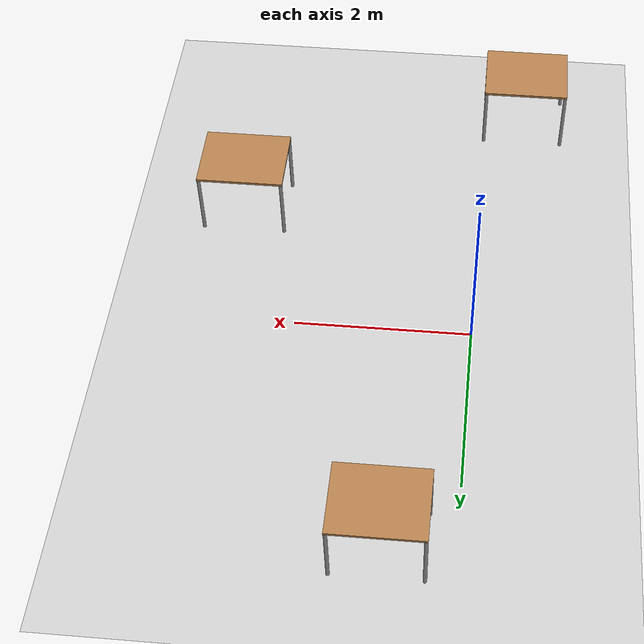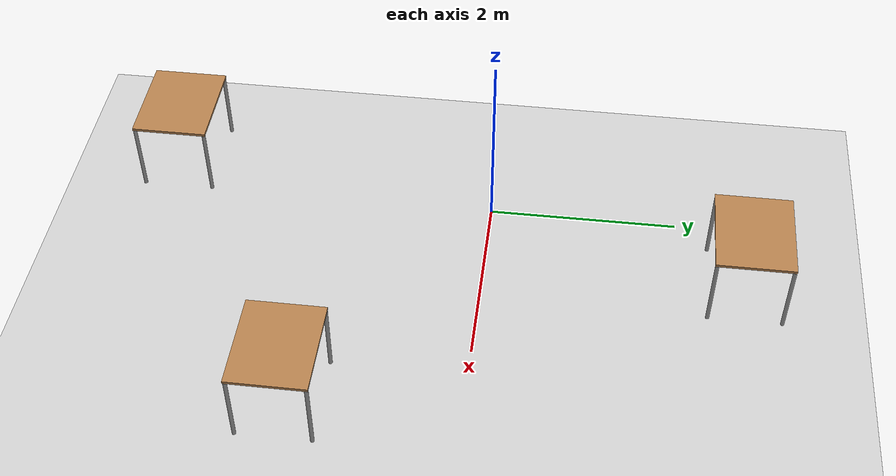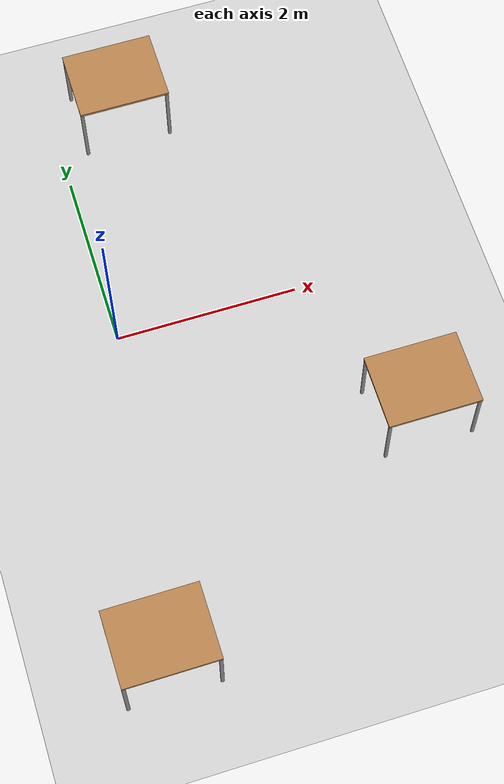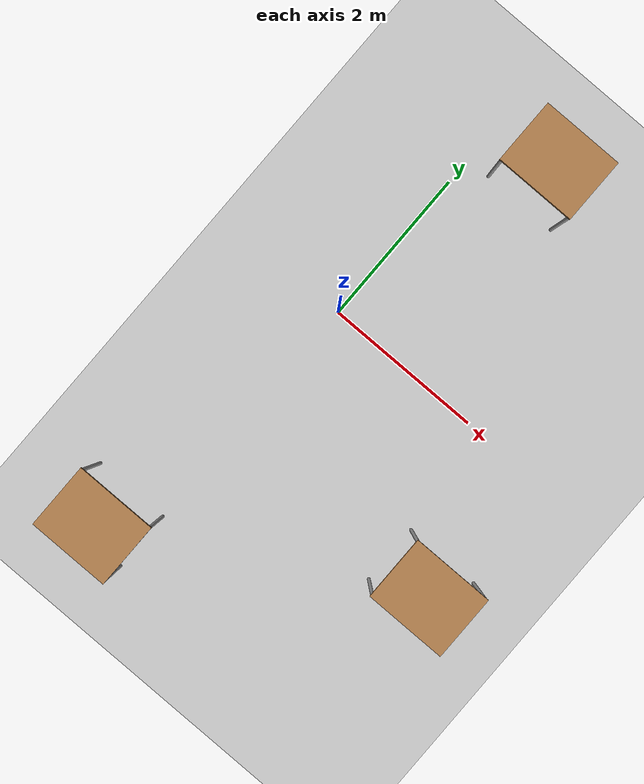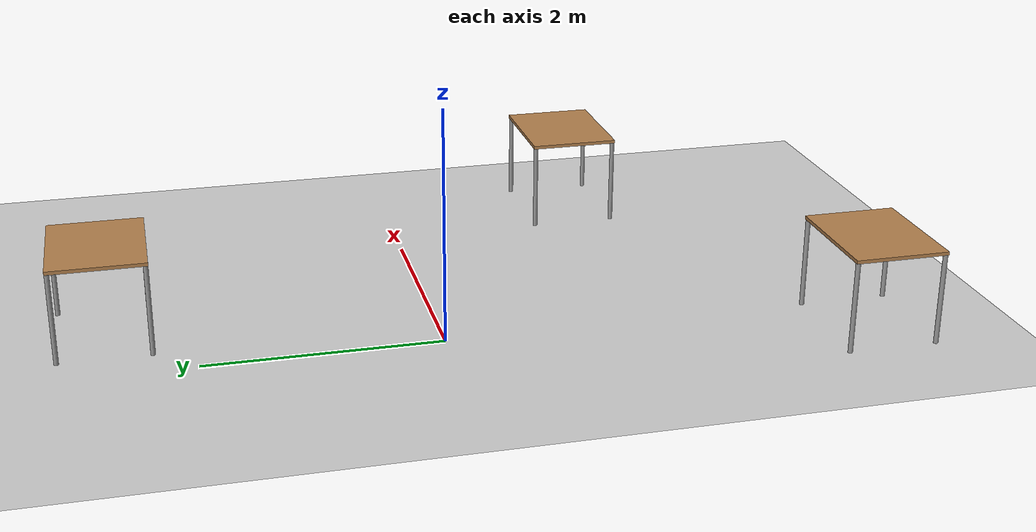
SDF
<sdf version="1.7">
 <world name="default">
  <plugin name="closest_link_attacher" filename="libclosest_link_attacher.so"/>
  <light name="sun" type="directional">
   <pose>0 0 10 0 -0 0</pose>
   <diffuse>0.8 0.8 0.8 1</diffuse>
   <specular>0.2 0.2 0.2 1</specular>
   <attenuation>
    <range>1000</range>
    <constant>0.9</constant>
    <linear>0.01</linear>
    <quadratic>0.001</quadratic>
   </attenuation>
   <direction>-0.5 0.1 -0.9</direction>
   <spot><inner_angle>0</inner_angle><outer_angle>0</outer_angle><falloff>0</falloff></spot>
  </light>
  <model name="ground_plane">
   <static>1</static>
   <link name="link">
    <collision name="collision">
     <geometry><plane><normal>0 0 1</normal><size>100 100</size></plane></geometry>
     <surface>
      <contact><collide_bitmask>65535</collide_bitmask></contact>
      <friction><ode><mu>100</mu><mu2>50</mu2></ode></friction>
     </surface>
    </collision>
    <visual name="visual">
     <cast_shadows>0</cast_shadows>
     <geometry><plane><normal>0 0 1</normal><size>100 100</size></plane></geometry>
     <material>
      <script><uri>file://media/materials/scripts/gazebo.material</uri><name>Gazebo/Grey</name></script>
     </material>
    </visual>
   </link>
  </model>
  <gravity>0 0 -9.8</gravity>
  <magnetic_field>6e-06 2.3e-05 -4.2e-05</magnetic_field>
  <atmosphere type="adiabatic"/>
  <physics name="default_physics" default="0" type="ode">
   <max_step_size>0.001</max_step_size>
   <real_time_factor>1</real_time_factor>
   <real_time_update_rate>1000</real_time_update_rate>
   <ode>
    <solver>
     <thread_position_correction>1</thread_position_correction>
     <island_threads>8</island_threads>
     <type>quick</type>
     <iters>50</iters>
     <sor>1.3</sor>
     <use_dynamic_moi_rescaling>0</use_dynamic_moi_rescaling>
    </solver>
    <constraints>
     <cfm>0</cfm>
     <erp>0.2</erp>
     <contact_max_correcting_vel>100</contact_max_correcting_vel>
     <contact_surface_layer>0.001</contact_surface_layer>
    </constraints>
   </ode>
  </physics>
  <scene><ambient>0.4 0.4 0.4 1</ambient><background>0.7 0.7 0.7 1</background><shadows>1</shadows></scene>
  <audio><device>default</device></audio>
  <spherical_coordinates>
   <surface_model>EARTH_WGS84</surface_model>
   <latitude_deg>0</latitude_deg>
   <longitude_deg>0</longitude_deg>
   <elevation>0</elevation>
   <heading_deg>0</heading_deg>
  </spherical_coordinates>
  <model name="table_2">
   <static>1</static>
   <link name="link">
    <collision name="surface">
     <pose>0 0 0.8 0 -0 0</pose>
     <geometry><box><size>1 0.8 0.03</size></box></geometry>
    </collision>
    <visual name="visual1">
     <pose>0 0 0.8 0 -0 0</pose>
     <geometry><box><size>1 0.8 0.03</size></box></geometry>
     <material>
      <script><uri>file://media/materials/scripts/gazebo.material</uri><name>Gazebo/Wood</name></script>
     </material>
    </visual>
    <collision name="front_left_leg">
     <pose>0.48 0.38 0.4 0 -0 0</pose>
     <geometry><cylinder><radius>0.02</radius><length>0.8</length></cylinder></geometry>
    </collision>
    <visual name="front_left_leg">
     <pose>0.48 0.38 0.4 0 -0 0</pose>
     <geometry><cylinder><radius>0.02</radius><length>0.8</length></cylinder></geometry>
     <material>
      <script><uri>file://media/materials/scripts/gazebo.material</uri><name>Gazebo/Grey</name></script>
     </material>
    </visual>
    <collision name="front_right_leg">
     <pose>0.48 -0.38 0.4 0 -0 0</pose>
     <geometry><cylinder><radius>0.02</radius><length>0.8</length></cylinder></geometry>
    </collision>
    <visual name="front_right_leg">
     <pose>0.48 -0.38 0.4 0 -0 0</pose>
     <geometry><cylinder><radius>0.02</radius><length>0.8</length></cylinder></geometry>
     <material>
      <script><uri>file://media/materials/scripts/gazebo.material</uri><name>Gazebo/Grey</name></script>
     </material>
    </visual>
    <collision name="back_right_leg">
     <pose>-0.48 -0.38 0.4 0 -0 0</pose>
     <geometry><cylinder><radius>0.02</radius><length>0.8</length></cylinder></geometry>
    </collision>
    <visual name="back_right_leg">
     <pose>-0.48 -0.38 0.4 0 -0 0</pose>
     <geometry><cylinder><radius>0.02</radius><length>0.8</length></cylinder></geometry>
     <material>
      <script><uri>file://media/materials/scripts/gazebo.material</uri><name>Gazebo/Grey</name></script>
     </material>
    </visual>
    <collision name="back_left_leg">
     <pose>-0.48 0.38 0.4 0 -0 0</pose>
     <geometry><cylinder><radius>0.02</radius><length>0.8</length></cylinder></geometry>
    </collision>
    <visual name="back_left_leg">
     <pose>-0.48 0.38 0.4 0 -0 0</pose>
     <geometry><cylinder><radius>0.02</radius><length>0.8</length></cylinder></geometry>
     <material>
      <script><uri>file://media/materials/scripts/gazebo.material</uri><name>Gazebo/Grey</name></script>
     </material>
    </visual>
    <velocity_decay><linear>0</linear><angular>0</angular></velocity_decay>
   </link>
   <pose>-0.483333 -3.5285 0 0 -0 0</pose>
  </model>
  <model name="table_2_clone">
   <static>1</static>
   <link name="link">
    <collision name="surface">
     <pose>0 0 0.8 0 -0 0</pose>
     <geometry><box><size>1 0.8 0.03</size></box></geometry>
    </collision>
    <visual name="visual1">
     <pose>0 0 0.8 0 -0 0</pose>
     <geometry><box><size>1 0.8 0.03</size></box></geometry>
     <material>
      <script><uri>file://media/materials/scripts/gazebo.material</uri><name>Gazebo/Wood</name></script>
     </material>
    </visual>
    <collision name="front_left_leg">
     <pose>0.48 0.38 0.4 0 -0 0</pose>
     <geometry><cylinder><radius>0.02</radius><length>0.8</length></cylinder></geometry>
    </collision>
    <visual name="front_left_leg">
     <pose>0.48 0.38 0.4 0 -0 0</pose>
     <geometry><cylinder><radius>0.02</radius><length>0.8</length></cylinder></geometry>
     <material>
      <script><uri>file://media/materials/scripts/gazebo.material</uri><name>Gazebo/Grey</name></script>
     </material>
    </visual>
    <collision name="front_right_leg">
     <pose>0.48 -0.38 0.4 0 -0 0</pose>
     <geometry><cylinder><radius>0.02</radius><length>0.8</length></cylinder></geometry>
    </collision>
    <visual name="front_right_leg">
     <pose>0.48 -0.38 0.4 0 -0 0</pose>
     <geometry><cylinder><radius>0.02</radius><length>0.8</length></cylinder></geometry>
     <material>
      <script><uri>file://media/materials/scripts/gazebo.material</uri><name>Gazebo/Grey</name></script>
     </material>
    </visual>
    <collision name="back_right_leg">
     <pose>-0.48 -0.38 0.4 0 -0 0</pose>
     <geometry><cylinder><radius>0.02</radius><length>0.8</length></cylinder></geometry>
    </collision>
    <visual name="back_right_leg">
     <pose>-0.48 -0.38 0.4 0 -0 0</pose>
     <geometry><cylinder><radius>0.02</radius><length>0.8</length></cylinder></geometry>
     <material>
      <script><uri>file://media/materials/scripts/gazebo.material</uri><name>Gazebo/Grey</name></script>
     </material>
    </visual>
    <collision name="back_left_leg">
     <pose>-0.48 0.38 0.4 0 -0 0</pose>
     <geometry><cylinder><radius>0.02</radius><length>0.8</length></cylinder></geometry>
    </collision>
    <visual name="back_left_leg">
     <pose>-0.48 0.38 0.4 0 -0 0</pose>
     <geometry><cylinder><radius>0.02</radius><length>0.8</length></cylinder></geometry>
     <material>
      <script><uri>file://media/materials/scripts/gazebo.material</uri><name>Gazebo/Grey</name></script>
     </material>
    </visual>
    <velocity_decay><linear>0</linear><angular>0</angular></velocity_decay>
   </link>
   <pose>2.78375 -1.75897 0 0 -0 0</pose>
  </model>
  <model name="table_2_clone_0">
   <static>1</static>
   <link name="link">
    <collision name="surface">
     <pose>0 0 0.8 0 -0 0</pose>
     <geometry><box><size>1 0.8 0.03</size></box></geometry>
    </collision>
    <visual name="visual1">
     <pose>0 0 0.8 0 -0 0</pose>
     <geometry><box><size>1 0.8 0.03</size></box></geometry>
     <material>
      <script><uri>file://media/materials/scripts/gazebo.material</uri><name>Gazebo/Wood</name></script>
     </material>
    </visual>
    <collision name="front_left_leg">
     <pose>0.48 0.38 0.4 0 -0 0</pose>
     <geometry><cylinder><radius>0.02</radius><length>0.8</length></cylinder></geometry>
    </collision>
    <visual name="front_left_leg">
     <pose>0.48 0.38 0.4 0 -0 0</pose>
     <geometry><cylinder><radius>0.02</radius><length>0.8</length></cylinder></geometry>
     <material>
      <script><uri>file://media/materials/scripts/gazebo.material</uri><name>Gazebo/Grey</name></script>
     </material>
    </visual>
    <collision name="front_right_leg">
     <pose>0.48 -0.38 0.4 0 -0 0</pose>
     <geometry><cylinder><radius>0.02</radius><length>0.8</length></cylinder></geometry>
    </collision>
    <visual name="front_right_leg">
     <pose>0.48 -0.38 0.4 0 -0 0</pose>
     <geometry><cylinder><radius>0.02</radius><length>0.8</length></cylinder></geometry>
     <material>
      <script><uri>file://media/materials/scripts/gazebo.material</uri><name>Gazebo/Grey</name></script>
     </material>
    </visual>
    <collision name="back_right_leg">
     <pose>-0.48 -0.38 0.4 0 -0 0</pose>
     <geometry><cylinder><radius>0.02</radius><length>0.8</length></cylinder></geometry>
    </collision>
    <visual name="back_right_leg">
     <pose>-0.48 -0.38 0.4 0 -0 0</pose>
     <geometry><cylinder><radius>0.02</radius><length>0.8</length></cylinder></geometry>
     <material>
      <script><uri>file://media/materials/scripts/gazebo.material</uri><name>Gazebo/Grey</name></script>
     </material>
    </visual>
    <collision name="back_left_leg">
     <pose>-0.48 0.38 0.4 0 -0 0</pose>
     <geometry><cylinder><radius>0.02</radius><length>0.8</length></cylinder></geometry>
    </collision>
    <visual name="back_left_leg">
     <pose>-0.48 0.38 0.4 0 -0 0</pose>
     <geometry><cylinder><radius>0.02</radius><length>0.8</length></cylinder></geometry>
     <material>
      <script><uri>file://media/materials/scripts/gazebo.material</uri><name>Gazebo/Grey</name></script>
     </material>
    </visual>
    <velocity_decay><linear>0</linear><angular>0</angular></velocity_decay>
   </link>
   <pose>0.781235 2.73104 0 0 -0 0</pose>
  </model>
 </world>
</sdf>
